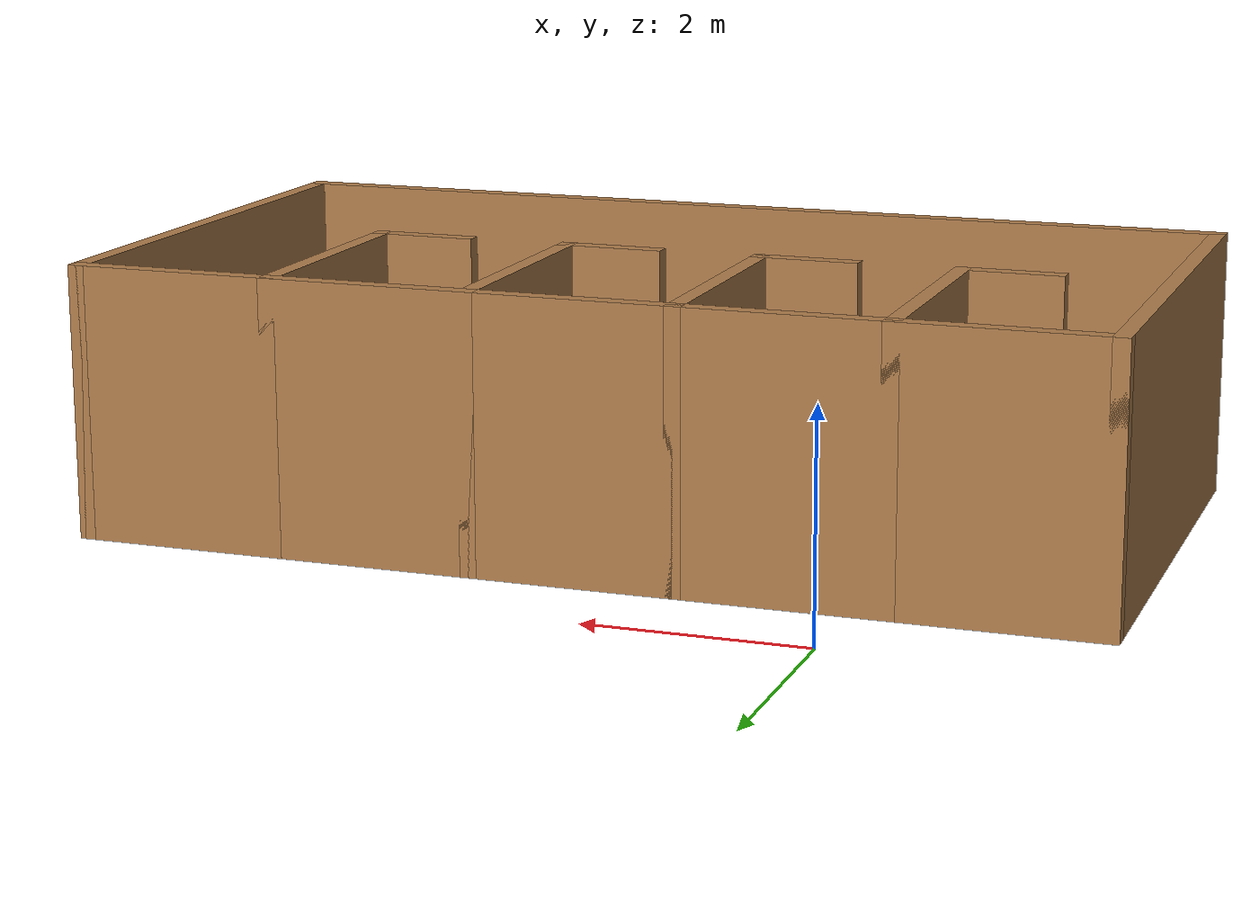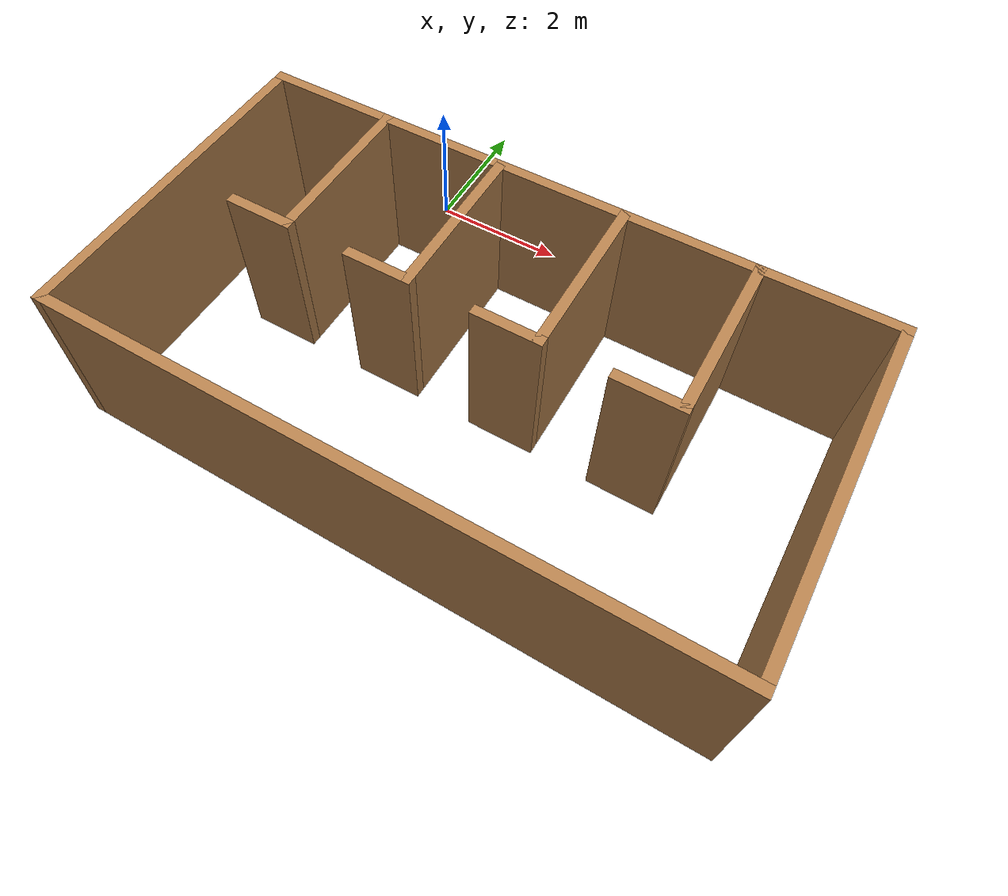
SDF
<?xml version='1.0'?>
<sdf version='1.7'>
  <model name='World'>
    <pose>2.435 -2.9475 0 0 -0 0</pose>
    <link name='Wall_10'>
      <collision name='Wall_10_Collision'>
        <geometry>
          <box>
            <size>1 0.15 2.5</size>
          </box>
        </geometry>
        <pose>0 0 1.25 0 -0 0</pose>
      </collision>
      <visual name='Wall_10_Visual'>
        <pose>0 0 1.25 0 -0 0</pose>
        <geometry>
          <box>
            <size>1 0.15 2.5</size>
          </box>
        </geometry>
        <material>
          <script>
            <uri>file://media/materials/scripts/gazebo.material</uri>
            <name>Gazebo/Wood</name>
          </script>
          <ambient>1 1 1 1</ambient>
        </material>
        <meta>
          <layer>0</layer>
        </meta>
      </visual>
      <pose>-1.35 -0.3725 0 0 -0 3.14159</pose>
    </link>
    <link name='Wall_12'>
      <collision name='Wall_12_Collision'>
        <geometry>
          <box>
            <size>2 0.15 2.5</size>
          </box>
        </geometry>
        <pose>0 0 1.25 0 -0 0</pose>
      </collision>
      <visual name='Wall_12_Visual'>
        <pose>0 0 1.25 0 -0 0</pose>
        <geometry>
          <box>
            <size>2 0.15 2.5</size>
          </box>
        </geometry>
        <material>
          <script>
            <uri>file://media/materials/scripts/gazebo.material</uri>
            <name>Gazebo/Wood</name>
          </script>
          <ambient>1 1 1 1</ambient>
        </material>
        <meta>
          <layer>0</layer>
        </meta>
      </visual>
      <pose>0 1.9775 0 0 -0 0</pose>
    </link>
    <link name='Wall_13'>
      <collision name='Wall_13_Collision'>
        <geometry>
          <box>
            <size>2.5 0.15 2.5</size>
          </box>
        </geometry>
        <pose>0 0 1.25 0 -0 0</pose>
      </collision>
      <visual name='Wall_13_Visual'>
        <pose>0 0 1.25 0 -0 0</pose>
        <geometry>
          <box>
            <size>2.5 0.15 2.5</size>
          </box>
        </geometry>
        <material>
          <script>
            <uri>file://media/materials/scripts/gazebo.material</uri>
            <name>Gazebo/Wood</name>
          </script>
          <ambient>1 1 1 1</ambient>
        </material>
        <meta>
          <layer>0</layer>
        </meta>
      </visual>
      <pose>0.925 0.8025 0 0 -0 -1.5708</pose>
    </link>
    <link name='Wall_14'>
      <collision name='Wall_14_Collision'>
        <geometry>
          <box>
            <size>1 0.15 2.5</size>
          </box>
        </geometry>
        <pose>0 0 1.25 0 -0 0</pose>
      </collision>
      <visual name='Wall_14_Visual'>
        <pose>0 0 1.25 0 -0 0</pose>
        <geometry>
          <box>
            <size>1 0.15 2.5</size>
          </box>
        </geometry>
        <material>
          <script>
            <uri>file://media/materials/scripts/gazebo.material</uri>
            <name>Gazebo/Wood</name>
          </script>
          <ambient>1 1 1 1</ambient>
        </material>
        <meta>
          <layer>0</layer>
        </meta>
      </visual>
      <pose>0.5 -0.3725 0 0 -0 3.14159</pose>
    </link>
    <link name='Wall_16'>
      <collision name='Wall_16_Collision'>
        <geometry>
          <box>
            <size>2 0.15 2.5</size>
          </box>
        </geometry>
        <pose>0 0 1.25 0 -0 0</pose>
      </collision>
      <visual name='Wall_16_Visual'>
        <pose>0 0 1.25 0 -0 0</pose>
        <geometry>
          <box>
            <size>2 0.15 2.5</size>
          </box>
        </geometry>
        <material>
          <script>
            <uri>file://media/materials/scripts/gazebo.material</uri>
            <name>Gazebo/Wood</name>
          </script>
          <ambient>1 1 1 1</ambient>
        </material>
        <meta>
          <layer>0</layer>
        </meta>
      </visual>
      <pose>1.85 1.9775 0 0 -0 0</pose>
    </link>
    <link name='Wall_17'>
      <collision name='Wall_17_Collision'>
        <geometry>
          <box>
            <size>2.5 0.15 2.5</size>
          </box>
        </geometry>
        <pose>0 0 1.25 0 -0 0</pose>
      </collision>
      <visual name='Wall_17_Visual'>
        <pose>0 0 1.25 0 -0 0</pose>
        <geometry>
          <box>
            <size>2.5 0.15 2.5</size>
          </box>
        </geometry>
        <material>
          <script>
            <uri>file://media/materials/scripts/gazebo.material</uri>
            <name>Gazebo/Wood</name>
          </script>
          <ambient>1 1 1 1</ambient>
        </material>
        <meta>
          <layer>0</layer>
        </meta>
      </visual>
      <pose>2.775 0.8025 0 0 -0 -1.5708</pose>
    </link>
    <link name='Wall_18'>
      <collision name='Wall_18_Collision'>
        <geometry>
          <box>
            <size>1 0.15 2.5</size>
          </box>
        </geometry>
        <pose>0 0 1.25 0 -0 0</pose>
      </collision>
      <visual name='Wall_18_Visual'>
        <pose>0 0 1.25 0 -0 0</pose>
        <geometry>
          <box>
            <size>1 0.15 2.5</size>
          </box>
        </geometry>
        <material>
          <script>
            <uri>file://media/materials/scripts/gazebo.material</uri>
            <name>Gazebo/Wood</name>
          </script>
          <ambient>1 1 1 1</ambient>
        </material>
        <meta>
          <layer>0</layer>
        </meta>
      </visual>
      <pose>2.35 -0.3725 0 0 -0 3.14159</pose>
    </link>
    <link name='Wall_2'>
      <collision name='Wall_2_Collision'>
        <geometry>
          <box>
            <size>5 0.15 2.5</size>
          </box>
        </geometry>
        <pose>0 0 1.25 0 -0 0</pose>
      </collision>
      <visual name='Wall_2_Visual'>
        <pose>0 0 1.25 0 -0 0</pose>
        <geometry>
          <box>
            <size>5 0.15 2.5</size>
          </box>
        </geometry>
        <material>
          <script>
            <uri>file://media/materials/scripts/gazebo.material</uri>
            <name>Gazebo/Wood</name>
          </script>
          <ambient>1 1 1 1</ambient>
        </material>
        <meta>
          <layer>0</layer>
        </meta>
      </visual>
      <pose>-4.625 -0.4475 0 0 -0 -1.5708</pose>
    </link>
    <link name='Wall_20'>
      <collision name='Wall_20_Collision'>
        <geometry>
          <box>
            <size>2 0.15 2.5</size>
          </box>
        </geometry>
        <pose>0 0 1.25 0 -0 0</pose>
      </collision>
      <visual name='Wall_20_Visual'>
        <pose>0 0 1.25 0 -0 0</pose>
        <geometry>
          <box>
            <size>2 0.15 2.5</size>
          </box>
        </geometry>
        <material>
          <script>
            <uri>file://media/materials/scripts/gazebo.material</uri>
            <name>Gazebo/Wood</name>
          </script>
          <ambient>1 1 1 1</ambient>
        </material>
        <meta>
          <layer>0</layer>
        </meta>
      </visual>
      <pose>3.7 1.9775 0 0 -0 0</pose>
    </link>
    <link name='Wall_21'>
      <collision name='Wall_21_Collision'>
        <geometry>
          <box>
            <size>5 0.15 2.5</size>
          </box>
        </geometry>
        <pose>0 0 1.25 0 -0 0</pose>
      </collision>
      <visual name='Wall_21_Visual'>
        <pose>0 0 1.25 0 -0 0</pose>
        <geometry>
          <box>
            <size>5 0.15 2.5</size>
          </box>
        </geometry>
        <material>
          <script>
            <uri>file://media/materials/scripts/gazebo.material</uri>
            <name>Gazebo/Wood</name>
          </script>
          <ambient>1 1 1 1</ambient>
        </material>
        <meta>
          <layer>0</layer>
        </meta>
      </visual>
      <pose>4.625 -0.4475 0 0 -0 -1.5708</pose>
    </link>
    <link name='Wall_22'>
      <collision name='Wall_22_Collision'>
        <geometry>
          <box>
            <size>9.4 0.15 2.5</size>
          </box>
        </geometry>
        <pose>0 0 1.25 0 -0 0</pose>
      </collision>
      <visual name='Wall_22_Visual'>
        <pose>0 0 1.25 0 -0 0</pose>
        <geometry>
          <box>
            <size>9.4 0.15 2.5</size>
          </box>
        </geometry>
        <material>
          <script>
            <uri>file://media/materials/scripts/gazebo.material</uri>
            <name>Gazebo/Wood</name>
          </script>
          <ambient>1 1 1 1</ambient>
        </material>
        <meta>
          <layer>0</layer>
        </meta>
      </visual>
      <pose>0 -2.8725 0 0 -0 3.14159</pose>
    </link>
    <link name='Wall_4'>
      <collision name='Wall_4_Collision'>
        <geometry>
          <box>
            <size>2 0.15 2.5</size>
          </box>
        </geometry>
        <pose>0 0 1.25 0 -0 0</pose>
      </collision>
      <visual name='Wall_4_Visual'>
        <pose>0 0 1.25 0 -0 0</pose>
        <geometry>
          <box>
            <size>2 0.15 2.5</size>
          </box>
        </geometry>
        <material>
          <script>
            <uri>file://media/materials/scripts/gazebo.material</uri>
            <name>Gazebo/Wood</name>
          </script>
          <ambient>1 1 1 1</ambient>
        </material>
        <meta>
          <layer>0</layer>
        </meta>
      </visual>
      <pose>-3.7 1.9775 0 0 -0 0</pose>
    </link>
    <link name='Wall_5'>
      <collision name='Wall_5_Collision'>
        <geometry>
          <box>
            <size>2.5 0.15 2.5</size>
          </box>
        </geometry>
        <pose>0 0 1.25 0 -0 0</pose>
      </collision>
      <visual name='Wall_5_Visual'>
        <pose>0 0 1.25 0 -0 0</pose>
        <geometry>
          <box>
            <size>2.5 0.15 2.5</size>
          </box>
        </geometry>
        <material>
          <script>
            <uri>file://media/materials/scripts/gazebo.material</uri>
            <name>Gazebo/Wood</name>
          </script>
          <ambient>1 1 1 1</ambient>
        </material>
        <meta>
          <layer>0</layer>
        </meta>
      </visual>
      <pose>-2.775 0.8025 0 0 -0 -1.5708</pose>
    </link>
    <link name='Wall_6'>
      <collision name='Wall_6_Collision'>
        <geometry>
          <box>
            <size>1 0.15 2.5</size>
          </box>
        </geometry>
        <pose>0 0 1.25 0 -0 0</pose>
      </collision>
      <visual name='Wall_6_Visual'>
        <pose>0 0 1.25 0 -0 0</pose>
        <geometry>
          <box>
            <size>1 0.15 2.5</size>
          </box>
        </geometry>
        <material>
          <script>
            <uri>file://media/materials/scripts/gazebo.material</uri>
            <name>Gazebo/Wood</name>
          </script>
          <ambient>1 1 1 1</ambient>
        </material>
        <meta>
          <layer>0</layer>
        </meta>
      </visual>
      <pose>-3.2 -0.3725 0 0 -0 3.14159</pose>
    </link>
    <link name='Wall_8'>
      <collision name='Wall_8_Collision'>
        <geometry>
          <box>
            <size>2 0.15 2.5</size>
          </box>
        </geometry>
        <pose>0 0 1.25 0 -0 0</pose>
      </collision>
      <visual name='Wall_8_Visual'>
        <pose>0 0 1.25 0 -0 0</pose>
        <geometry>
          <box>
            <size>2 0.15 2.5</size>
          </box>
        </geometry>
        <material>
          <script>
            <uri>file://media/materials/scripts/gazebo.material</uri>
            <name>Gazebo/Wood</name>
          </script>
          <ambient>1 1 1 1</ambient>
        </material>
        <meta>
          <layer>0</layer>
        </meta>
      </visual>
      <pose>-1.85 1.9775 0 0 -0 0</pose>
    </link>
    <link name='Wall_9'>
      <collision name='Wall_9_Collision'>
        <geometry>
          <box>
            <size>2.5 0.15 2.5</size>
          </box>
        </geometry>
        <pose>0 0 1.25 0 -0 0</pose>
      </collision>
      <visual name='Wall_9_Visual'>
        <pose>0 0 1.25 0 -0 0</pose>
        <geometry>
          <box>
            <size>2.5 0.15 2.5</size>
          </box>
        </geometry>
        <material>
          <script>
            <uri>file://media/materials/scripts/gazebo.material</uri>
            <name>Gazebo/Wood</name>
          </script>
          <ambient>1 1 1 1</ambient>
        </material>
        <meta>
          <layer>0</layer>
        </meta>
      </visual>
      <pose>-0.925 0.8025 0 0 -0 -1.5708</pose>
    </link>
    <static>1</static>
  </model>
</sdf>
